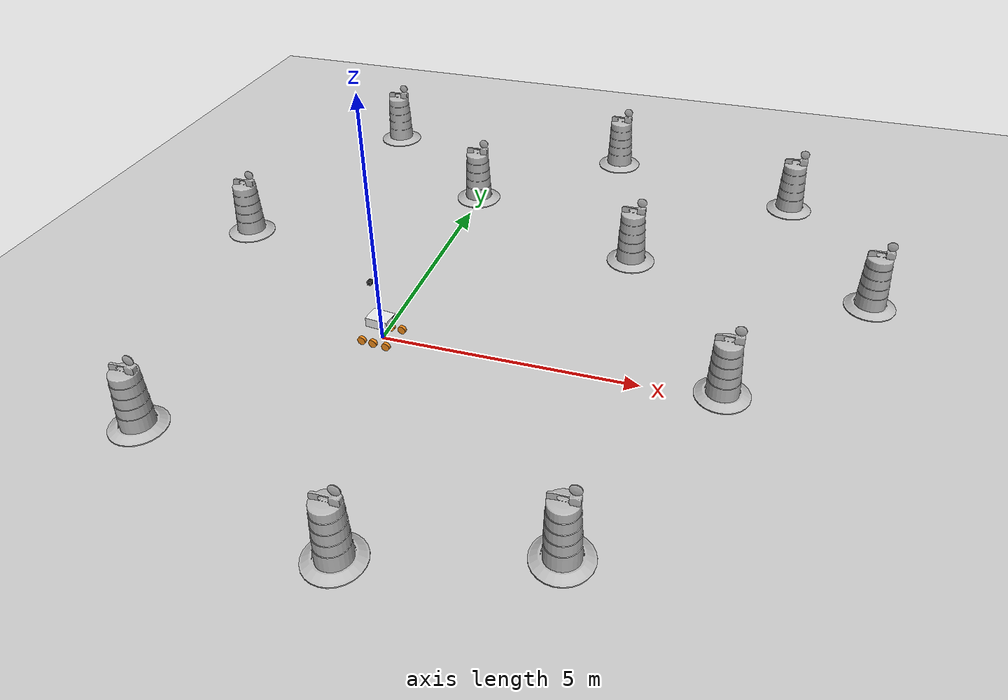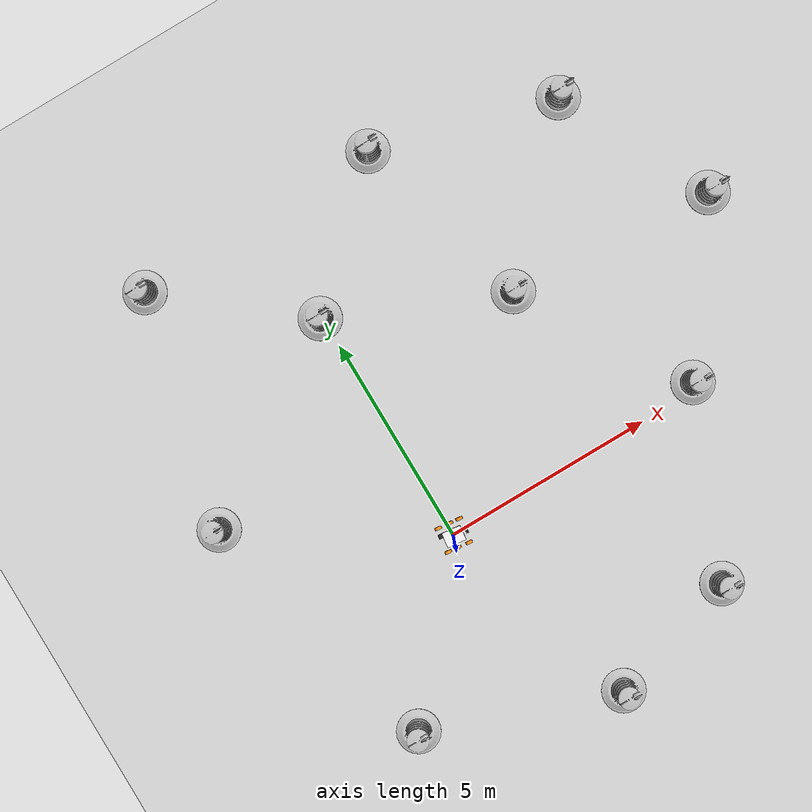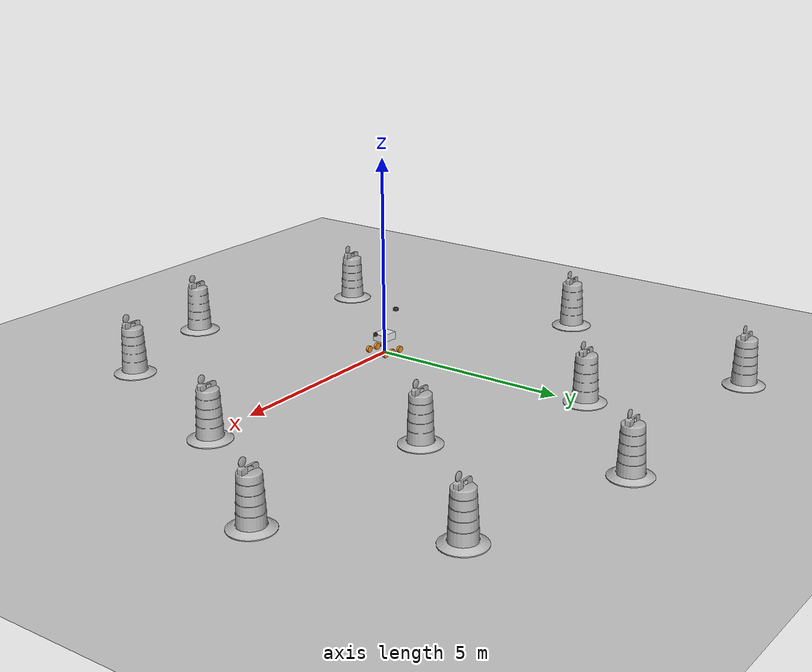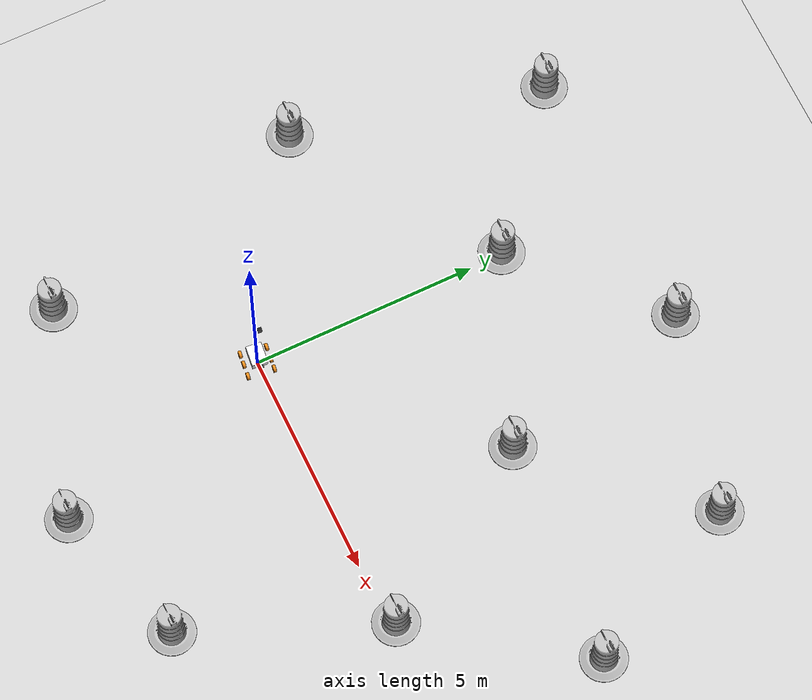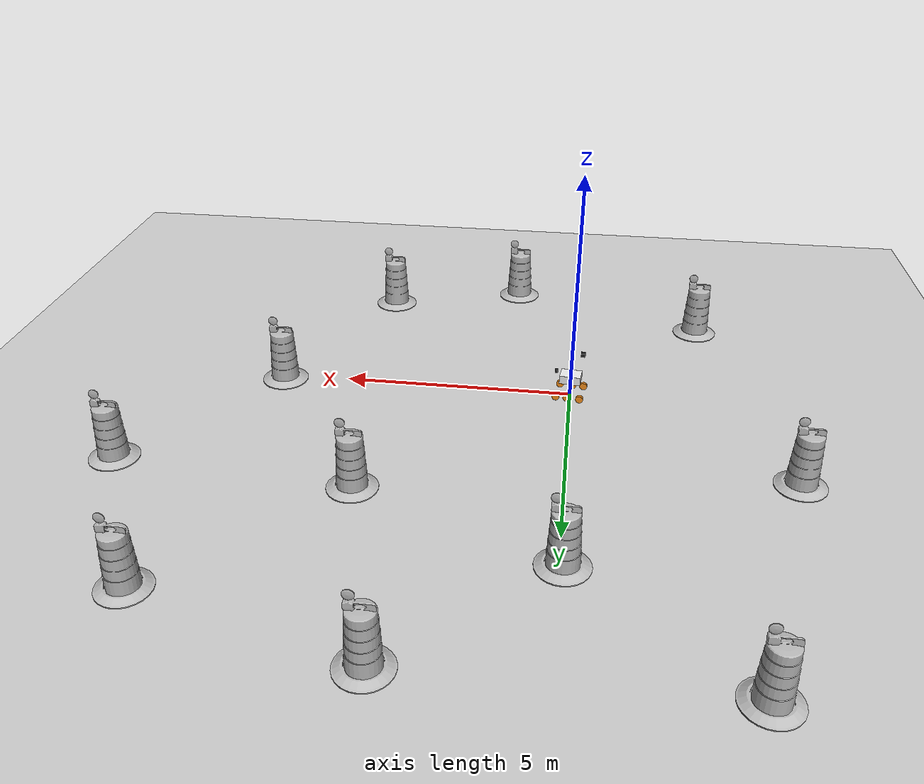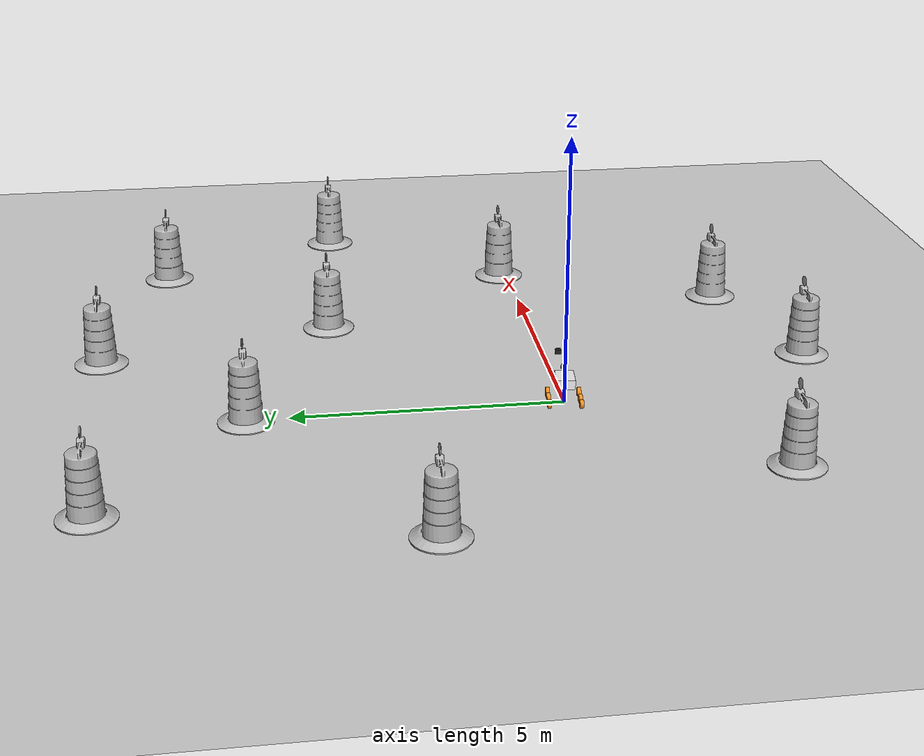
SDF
<sdf version="1.7">
 <world name="default">
  <light name="sun" type="directional">
   <pose>0 0 10 0 -0 0</pose>
   <diffuse>0.8 0.8 0.8 1</diffuse>
   <specular>0.2 0.2 0.2 1</specular>
   <attenuation>
    <range>1000</range>
    <constant>0.9</constant>
    <linear>0.01</linear>
    <quadratic>0.001</quadratic>
   </attenuation>
   <direction>-0.5 0.1 -0.9</direction>
   <spot><inner_angle>0</inner_angle><outer_angle>0</outer_angle><falloff>0</falloff></spot>
  </light>
  <model name="ground_plane">
   <static>1</static>
   <link name="link">
    <collision name="collision">
     <geometry><plane><normal>0 0 1</normal><size>100 100</size></plane></geometry>
     <surface><friction><ode><mu>100</mu><mu2>50</mu2></ode></friction></surface>
    </collision>
    <visual name="visual">
     <cast_shadows>0</cast_shadows>
     <geometry><plane><normal>0 0 1</normal><size>100 100</size></plane></geometry>
     <material>
      <script><uri>file://media/materials/scripts/gazebo.material</uri><name>Gazebo/Grey</name></script>
     </material>
    </visual>
   </link>
  </model>
  <gravity>0 0 -9.8</gravity>
  <magnetic_field>6e-06 2.3e-05 -4.2e-05</magnetic_field>
  <atmosphere type="adiabatic"/>
  <physics type="ode">
   <max_step_size>0.001</max_step_size>
   <real_time_factor>1</real_time_factor>
   <real_time_update_rate>1000</real_time_update_rate>
  </physics>
  <scene><ambient>0.4 0.4 0.4 1</ambient><background>0.7 0.7 0.7 1</background><shadows>1</shadows></scene>
  <audio><device>default</device></audio>
  <spherical_coordinates>
   <surface_model>EARTH_WGS84</surface_model>
   <latitude_deg>0</latitude_deg>
   <longitude_deg>0</longitude_deg>
   <elevation>0</elevation>
   <heading_deg>0</heading_deg>
  </spherical_coordinates>
  <model name="scorpio">
   <link name="base_link">
    <inertial>
     <pose>0.001322 0 0.3575 0 -0 0</pose>
     <mass>30.025</mass>
     <inertia>
      <ixx>0.382895</ixx>
      <ixy>0</ixy>
      <ixz>-0.00474267</ixz>
      <iyy>0.616101</iyy>
      <iyz>0</iyz>
      <izz>0.820148</izz>
     </inertia>
    </inertial>
    <collision name="base_link_fixed_joint_lump__chassis_collision">
     <pose>0 0 0.357 0 -0 0</pose>
     <geometry><box><size>0.454025 0.3429 0.187</size></box></geometry>
    </collision>
    <collision name="base_link_fixed_joint_lump__laser_frame_collision_1">
     <pose>0.3175 0 0.477 3.14159 1.57079 3.14159</pose>
     <geometry><cylinder><length>0.055</length><radius>0.0508</radius></cylinder></geometry>
    </collision>
    <visual name="base_link_fixed_joint_lump__chassis_visual">
     <pose>0 0 0.357 0 -0 0</pose>
     <geometry><box><size>0.454025 0.3429 0.187</size></box></geometry>
     <material>
      <script><name>Gazebo/White</name><uri>file://media/materials/scripts/gazebo.material</uri></script>
     </material>
    </visual>
    <visual name="base_link_fixed_joint_lump__camera_link_visual_1">
     <pose>-0.254 0.1651 1.0428 0 -0 0</pose>
     <geometry><box><size>0.0889 0.1016 0.0762</size></box></geometry>
     <material>
      <script><name>Gazebo/Black</name><uri>file://media/materials/scripts/gazebo.material</uri></script>
     </material>
    </visual>
    <visual name="base_link_fixed_joint_lump__laser_frame_visual_2">
     <pose>0.3175 0 0.477 3.14159 1.57079 3.14159</pose>
     <geometry><cylinder><length>0.055</length><radius>0.0508</radius></cylinder></geometry>
     <material>
      <script><name>Gazebo/Black</name><uri>file://media/materials/scripts/gazebo.material</uri></script>
     </material>
    </visual>
    <sensor name="camera" type="camera">
     <visualize>1</visualize>
     <update_rate>10</update_rate>
     <camera>
      <horizontal_fov>1.089</horizontal_fov>
      <image><format>R8G8B8</format><width>640</width><height>480</height></image>
      <clip><near>0.055</near><far>8</far></clip>
     </camera>
     <plugin name="camera_controller" filename="libgazebo_ros_camera.so">
      <frame_name>camera_link_optical</frame_name>
     </plugin>
     <pose>-0.254 0.1651 1.0428 0 -0 0</pose>
    </sensor>
    <sensor name="laser" type="ray">
     <visualize>0</visualize>
     <update_rate>10</update_rate>
     <ray>
      <scan>
       <horizontal>
        <samples>360</samples>
        <resolution>1</resolution>
        <min_angle>0</min_angle>
        <max_angle>6.28</max_angle>
       </horizontal>
       <vertical>
        <samples>180</samples>
        <resolution>1</resolution>
        <min_angle>0</min_angle>
        <max_angle>3.14</max_angle>
       </vertical>
      </scan>
      <range><min>0.12</min><max>30</max><resolution>0.015</resolution></range>
     </ray>
     <plugin name="laser_controller" filename="libgazebo_ros_ray_sensor.so">
      <ros><remapping>~/out:=cloud_in</remapping></ros>
      <output_type>sensor_msgs/PointCloud2</output_type>
      <frame_name>laser_frame</frame_name>
     </plugin>
     <pose>0.3175 0 0.477 3.14159 1.57079 3.14159</pose>
    </sensor>
   </link>
   <joint name="left_front_wheel_joint" type="revolute">
    <pose relative_to="base_link">0.269 0.29 0 -1.5708 0 0</pose>
    <parent>base_link</parent>
    <child>left_front_wheel</child>
    <axis>
     <xyz>0 0 1</xyz>
     <limit><lower>-1e+16</lower><upper>1e+16</upper></limit>
     <dynamics><spring_reference>0</spring_reference><spring_stiffness>0</spring_stiffness></dynamics>
    </axis>
   </joint>
   <link name="left_front_wheel">
    <pose relative_to="left_front_wheel_joint">0 0 0 0 -0 0</pose>
    <inertial>
     <mass>0.4</mass>
     <inertia>
      <ixx>0.000807898</ixx>
      <ixy>0</ixy>
      <ixz>0</ixz>
      <iyy>0.000807898</iyy>
      <iyz>0</iyz>
      <izz>0.00133413</izz>
     </inertia>
    </inertial>
    <collision name="left_front_wheel_collision">
     <geometry><sphere><radius>0.081674</radius></sphere></geometry>
    </collision>
    <visual name="left_front_wheel_visual">
     <geometry><cylinder><length>0.065</length><radius>0.081674</radius></cylinder></geometry>
     <material>
      <script><name>Gazebo/Orange</name><uri>file://media/materials/scripts/gazebo.material</uri></script>
     </material>
    </visual>
   </link>
   <joint name="left_mid_wheel_joint" type="revolute">
    <pose relative_to="base_link">0.029 0.29 0 -1.5708 0 0</pose>
    <parent>base_link</parent>
    <child>left_mid_wheel</child>
    <axis>
     <xyz>0 0 1</xyz>
     <limit><lower>-1e+16</lower><upper>1e+16</upper></limit>
     <dynamics><spring_reference>0</spring_reference><spring_stiffness>0</spring_stiffness></dynamics>
    </axis>
   </joint>
   <link name="left_mid_wheel">
    <pose relative_to="left_mid_wheel_joint">0 0 0 0 -0 0</pose>
    <inertial>
     <mass>0.4</mass>
     <inertia>
      <ixx>0.000807898</ixx>
      <ixy>0</ixy>
      <ixz>0</ixz>
      <iyy>0.000807898</iyy>
      <iyz>0</iyz>
      <izz>0.00133413</izz>
     </inertia>
    </inertial>
    <collision name="left_mid_wheel_collision">
     <geometry><sphere><radius>0.081674</radius></sphere></geometry>
    </collision>
    <visual name="left_mid_wheel_visual">
     <geometry><cylinder><length>0.065</length><radius>0.081674</radius></cylinder></geometry>
     <material>
      <script><name>Gazebo/Orange</name><uri>file://media/materials/scripts/gazebo.material</uri></script>
     </material>
    </visual>
   </link>
   <joint name="left_rear_wheel_joint" type="revolute">
    <pose relative_to="base_link">-0.25 0.29 0 -1.5708 0 0</pose>
    <parent>base_link</parent>
    <child>left_rear_wheel</child>
    <axis>
     <xyz>0 0 1</xyz>
     <limit><lower>-1e+16</lower><upper>1e+16</upper></limit>
     <dynamics><spring_reference>0</spring_reference><spring_stiffness>0</spring_stiffness></dynamics>
    </axis>
   </joint>
   <link name="left_rear_wheel">
    <pose relative_to="left_rear_wheel_joint">0 0 0 0 -0 0</pose>
    <inertial>
     <mass>0.4</mass>
     <inertia>
      <ixx>0.000807898</ixx>
      <ixy>0</ixy>
      <ixz>0</ixz>
      <iyy>0.000807898</iyy>
      <iyz>0</iyz>
      <izz>0.00133413</izz>
     </inertia>
    </inertial>
    <collision name="left_rear_wheel_collision">
     <geometry><sphere><radius>0.081674</radius></sphere></geometry>
    </collision>
    <visual name="left_rear_wheel_visual">
     <geometry><cylinder><length>0.065</length><radius>0.081674</radius></cylinder></geometry>
     <material>
      <script><name>Gazebo/Orange</name><uri>file://media/materials/scripts/gazebo.material</uri></script>
     </material>
    </visual>
   </link>
   <joint name="right_front_wheel_joint" type="revolute">
    <pose relative_to="base_link">0.25 -0.29 0 -1.5708 0 0</pose>
    <parent>base_link</parent>
    <child>right_front_wheel</child>
    <axis>
     <xyz>0 0 1</xyz>
     <limit><lower>-1e+16</lower><upper>1e+16</upper></limit>
     <dynamics><spring_reference>0</spring_reference><spring_stiffness>0</spring_stiffness></dynamics>
    </axis>
   </joint>
   <link name="right_front_wheel">
    <pose relative_to="right_front_wheel_joint">0 0 0 0 -0 0</pose>
    <inertial>
     <mass>0.4</mass>
     <inertia>
      <ixx>0.000807898</ixx>
      <ixy>0</ixy>
      <ixz>0</ixz>
      <iyy>0.000807898</iyy>
      <iyz>0</iyz>
      <izz>0.00133413</izz>
     </inertia>
    </inertial>
    <collision name="right_front_wheel_collision">
     <geometry><sphere><radius>0.081674</radius></sphere></geometry>
    </collision>
    <visual name="right_front_wheel_visual">
     <geometry><cylinder><length>0.065</length><radius>0.081674</radius></cylinder></geometry>
     <material>
      <script><name>Gazebo/Orange</name><uri>file://media/materials/scripts/gazebo.material</uri></script>
     </material>
    </visual>
   </link>
   <joint name="right_mid_wheel_joint" type="revolute">
    <pose relative_to="base_link">-0.029 -0.29 0 -1.5708 0 0</pose>
    <parent>base_link</parent>
    <child>right_mid_wheel</child>
    <axis>
     <xyz>0 0 1</xyz>
     <limit><lower>-1e+16</lower><upper>1e+16</upper></limit>
     <dynamics><spring_reference>0</spring_reference><spring_stiffness>0</spring_stiffness></dynamics>
    </axis>
   </joint>
   <link name="right_mid_wheel">
    <pose relative_to="right_mid_wheel_joint">0 0 0 0 -0 0</pose>
    <inertial>
     <mass>0.4</mass>
     <inertia>
      <ixx>0.000807898</ixx>
      <ixy>0</ixy>
      <ixz>0</ixz>
      <iyy>0.000807898</iyy>
      <iyz>0</iyz>
      <izz>0.00133413</izz>
     </inertia>
    </inertial>
    <collision name="right_mid_wheel_collision">
     <geometry><sphere><radius>0.081674</radius></sphere></geometry>
    </collision>
    <visual name="right_mid_wheel_visual">
     <geometry><cylinder><length>0.065</length><radius>0.081674</radius></cylinder></geometry>
     <material>
      <script><name>Gazebo/Orange</name><uri>file://media/materials/scripts/gazebo.material</uri></script>
     </material>
    </visual>
   </link>
   <joint name="right_rear_wheel_joint" type="revolute">
    <pose relative_to="base_link">-0.269 -0.29 0 -1.5708 0 0</pose>
    <parent>base_link</parent>
    <child>right_rear_wheel</child>
    <axis>
     <xyz>0 0 1</xyz>
     <limit><lower>-1e+16</lower><upper>1e+16</upper></limit>
     <dynamics><spring_reference>0</spring_reference><spring_stiffness>0</spring_stiffness></dynamics>
    </axis>
   </joint>
   <link name="right_rear_wheel">
    <pose relative_to="right_rear_wheel_joint">0 0 0 0 -0 0</pose>
    <inertial>
     <mass>0.4</mass>
     <inertia>
      <ixx>0.000807898</ixx>
      <ixy>0</ixy>
      <ixz>0</ixz>
      <iyy>0.000807898</iyy>
      <iyz>0</iyz>
      <izz>0.00133413</izz>
     </inertia>
    </inertial>
    <collision name="right_rear_wheel_collision">
     <geometry><sphere><radius>0.081674</radius></sphere></geometry>
    </collision>
    <visual name="right_rear_wheel_visual">
     <geometry><cylinder><length>0.065</length><radius>0.081674</radius></cylinder></geometry>
     <material>
      <script><name>Gazebo/Orange</name><uri>file://media/materials/scripts/gazebo.material</uri></script>
     </material>
    </visual>
   </link>
   <static>0</static>
   <plugin name="gazebo_ros2_control" filename="libgazebo_ros2_control.so">
    <parameters>/home/spex/scorpio_ws/src/scorpio/config/my_controllers.yaml</parameters>
   </plugin>
   <pose>0.002546 6.3e-05 0.081667 1.4e-05 -2e-06 -0.107671</pose>
  </model>
  <model name="Construction Barrel">
   <link name="link">
    <inertial>
     <pose>0 0 0.4 0 -0 0</pose>
     <mass>500</mass>
     <inertia><ixx>51.2096</ixx><iyy>51.2096</iyy><izz>25</izz><ixy>0</ixy><ixz>0</ixz><iyz>0</iyz></inertia>
    </inertial>
    <collision name="collision">
     <geometry><mesh><uri>model://construction_barrel/meshes/construction_barrel.dae</uri></mesh></geometry>
    </collision>
    <visual name="visual">
     <geometry><mesh><uri>model://construction_barrel/meshes/construction_barrel.dae</uri></mesh></geometry>
    </visual>
   </link>
   <pose>4.00914 4.03331 -1e-06 2e-06 -1e-06 -2e-05</pose>
  </model>
  <model name="Construction Barrel_0">
   <link name="link">
    <inertial>
     <pose>0 0 0.4 0 -0 0</pose>
     <mass>500</mass>
     <inertia><ixx>51.2096</ixx><iyy>51.2096</iyy><izz>25</izz><ixy>0</ixy><ixz>0</ixz><iyz>0</iyz></inertia>
    </inertial>
    <collision name="collision">
     <geometry><mesh><uri>model://construction_barrel/meshes/construction_barrel.dae</uri></mesh></geometry>
    </collision>
    <visual name="visual">
     <geometry><mesh><uri>model://construction_barrel/meshes/construction_barrel.dae</uri></mesh></geometry>
    </visual>
   </link>
   <pose>6.43215 0.171257 -0 0 -0 -1.4e-05</pose>
  </model>
  <model name="Construction Barrel_1">
   <link name="link">
    <inertial>
     <pose>0 0 0.4 0 -0 0</pose>
     <mass>500</mass>
     <inertia><ixx>51.2096</ixx><iyy>51.2096</iyy><izz>25</izz><ixy>0</ixy><ixz>0</ixz><iyz>0</iyz></inertia>
    </inertial>
    <collision name="collision">
     <geometry><mesh><uri>model://construction_barrel/meshes/construction_barrel.dae</uri></mesh></geometry>
    </collision>
    <visual name="visual">
     <geometry><mesh><uri>model://construction_barrel/meshes/construction_barrel.dae</uri></mesh></geometry>
    </visual>
   </link>
   <pose>4.64403 -4.06744 1e-06 3e-06 2e-06 -1.4e-05</pose>
  </model>
  <model name="Construction Barrel_2">
   <link name="link">
    <inertial>
     <pose>0 0 0.4 0 -0 0</pose>
     <mass>500</mass>
     <inertia><ixx>51.2096</ixx><iyy>51.2096</iyy><izz>25</izz><ixy>0</ixy><ixz>0</ixz><iyz>0</iyz></inertia>
    </inertial>
    <collision name="collision">
     <geometry><mesh><uri>model://construction_barrel/meshes/construction_barrel.dae</uri></mesh></geometry>
    </collision>
    <visual name="visual">
     <geometry><mesh><uri>model://construction_barrel/meshes/construction_barrel.dae</uri></mesh></geometry>
    </visual>
   </link>
   <pose>1.49144 -4.99535 1e-06 2e-06 3e-06 -1.4e-05</pose>
  </model>
  <model name="Construction Barrel_3">
   <link name="link">
    <inertial>
     <pose>0 0 0.4 0 -0 0</pose>
     <mass>500</mass>
     <inertia><ixx>51.2096</ixx><iyy>51.2096</iyy><izz>25</izz><ixy>0</ixy><ixz>0</ixz><iyz>0</iyz></inertia>
    </inertial>
    <collision name="collision">
     <geometry><mesh><uri>model://construction_barrel/meshes/construction_barrel.dae</uri></mesh></geometry>
    </collision>
    <visual name="visual">
     <geometry><mesh><uri>model://construction_barrel/meshes/construction_barrel.dae</uri></mesh></geometry>
    </visual>
   </link>
   <pose>-0.056797 5.7619 0 0 0 -9e-06</pose>
  </model>
  <model name="Construction Barrel_4">
   <link name="link">
    <inertial>
     <pose>0 0 0.4 0 -0 0</pose>
     <mass>500</mass>
     <inertia><ixx>51.2096</ixx><iyy>51.2096</iyy><izz>25</izz><ixy>0</ixy><ixz>0</ixz><iyz>0</iyz></inertia>
    </inertial>
    <collision name="collision">
     <geometry><mesh><uri>model://construction_barrel/meshes/construction_barrel.dae</uri></mesh></geometry>
    </collision>
    <visual name="visual">
     <geometry><mesh><uri>model://construction_barrel/meshes/construction_barrel.dae</uri></mesh></geometry>
    </visual>
   </link>
   <pose>-4.48378 2.83724 -0 0 -0 -1.4e-05</pose>
  </model>
  <model name="Construction Barrel_5">
   <link name="link">
    <inertial>
     <pose>0 0 0.4 0 -0 0</pose>
     <mass>500</mass>
     <inertia><ixx>51.2096</ixx><iyy>51.2096</iyy><izz>25</izz><ixy>0</ixy><ixz>0</ixz><iyz>0</iyz></inertia>
    </inertial>
    <collision name="collision">
     <geometry><mesh><uri>model://construction_barrel/meshes/construction_barrel.dae</uri></mesh></geometry>
    </collision>
    <visual name="visual">
     <geometry><mesh><uri>model://construction_barrel/meshes/construction_barrel.dae</uri></mesh></geometry>
    </visual>
   </link>
   <pose>-2.95897 -3.39371 -2e-06 -0 7e-06 -8e-06</pose>
  </model>
  <model name="Construction Barrel_6">
   <link name="link">
    <inertial>
     <pose>0 0 0.4 0 -0 0</pose>
     <mass>500</mass>
     <inertia><ixx>51.2096</ixx><iyy>51.2096</iyy><izz>25</izz><ixy>0</ixy><ixz>0</ixz><iyz>0</iyz></inertia>
    </inertial>
    <collision name="collision">
     <geometry><mesh><uri>model://construction_barrel/meshes/construction_barrel.dae</uri></mesh></geometry>
    </collision>
    <visual name="visual">
     <geometry><mesh><uri>model://construction_barrel/meshes/construction_barrel.dae</uri></mesh></geometry>
    </visual>
   </link>
   <pose>7.15011 7.27965 -1e-06 3e-06 1e-05 -7e-06</pose>
  </model>
  <model name="Construction Barrel_7">
   <link name="link">
    <inertial>
     <pose>0 0 0.4 0 -0 0</pose>
     <mass>500</mass>
     <inertia><ixx>51.2096</ixx><iyy>51.2096</iyy><izz>25</izz><ixy>0</ixy><ixz>0</ixz><iyz>0</iyz></inertia>
    </inertial>
    <collision name="collision">
     <geometry><mesh><uri>model://construction_barrel/meshes/construction_barrel.dae</uri></mesh></geometry>
    </collision>
    <visual name="visual">
     <geometry><mesh><uri>model://construction_barrel/meshes/construction_barrel.dae</uri></mesh></geometry>
    </visual>
   </link>
   <pose>8.95048 3.6835 1e-06 2e-06 3e-06 -6e-06</pose>
  </model>
  <model name="Construction Barrel_8">
   <link name="link">
    <inertial>
     <pose>0 0 0.4 0 -0 0</pose>
     <mass>500</mass>
     <inertia><ixx>51.2096</ixx><iyy>51.2096</iyy><izz>25</izz><ixy>0</ixy><ixz>0</ixz><iyz>0</iyz></inertia>
    </inertial>
    <collision name="collision">
     <geometry><mesh><uri>model://construction_barrel/meshes/construction_barrel.dae</uri></mesh></geometry>
    </collision>
    <visual name="visual">
     <geometry><mesh><uri>model://construction_barrel/meshes/construction_barrel.dae</uri></mesh></geometry>
    </visual>
   </link>
   <pose>-3.15813 8.31672 0 0 0 -3e-06</pose>
  </model>
  <model name="Construction Barrel_9">
   <link name="link">
    <inertial>
     <pose>0 0 0.4 0 -0 0</pose>
     <mass>500</mass>
     <inertia><ixx>51.2096</ixx><iyy>51.2096</iyy><izz>25</izz><ixy>0</ixy><ixz>0</ixz><iyz>0</iyz></inertia>
    </inertial>
    <collision name="collision">
     <geometry><mesh><uri>model://construction_barrel/meshes/construction_barrel.dae</uri></mesh></geometry>
    </collision>
    <visual name="visual">
     <geometry><mesh><uri>model://construction_barrel/meshes/construction_barrel.dae</uri></mesh></geometry>
    </visual>
   </link>
   <pose>2.82502 8.45977 -1e-06 3e-06 -2e-06 -2e-06</pose>
  </model>
 </world>
</sdf>
